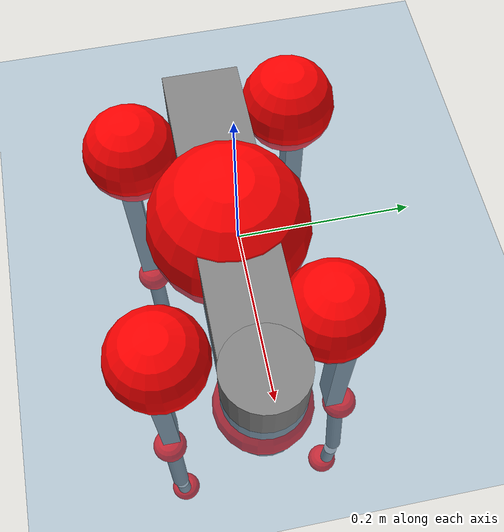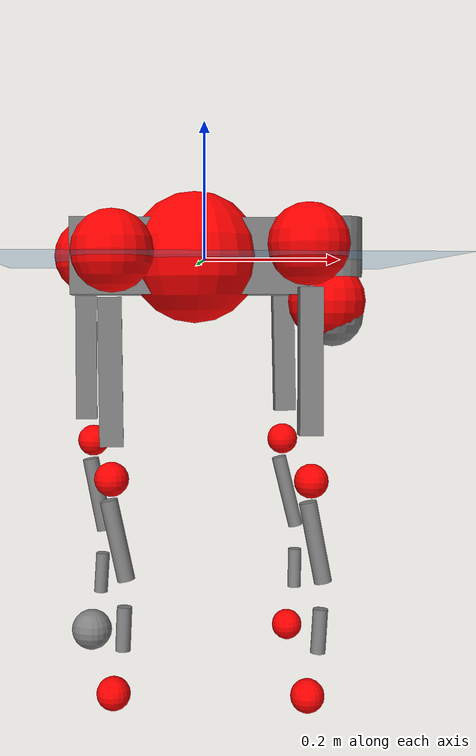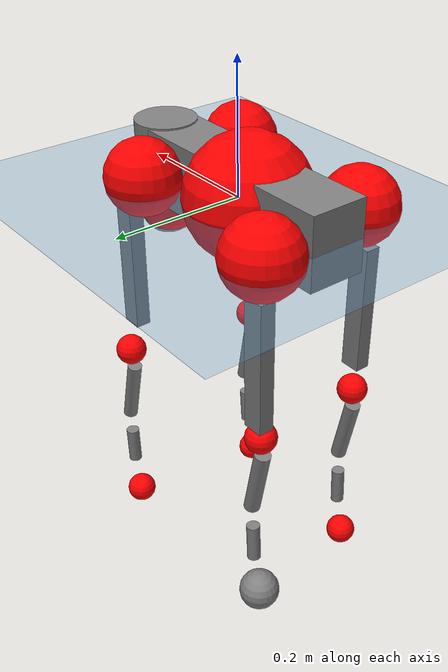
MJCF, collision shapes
<mujoco model="go2">
  <compiler angle="radian" assetdir="assets" balanceinertia="true" inertiafromgeom="false"/>

  <option timestep="0.005" density="1.2" viscosity="2e-05"/>

  <size nkey="1"/>

  <visual>
    <quality shadowsize="8192"/>
    <map shadowclip="0.5"/>
  </visual>

  <default>
    <default class="/">
      <geom contype="0" conaffinity="0" group="1" solref="-1000 -80"/>
      <site size="0.01 0.005 0.005" group="5"/>
      <general forcelimited="true" biastype="affine" gainprm="20" biasprm="0 -20 -0.5"/>
      <default class="go2">
        <joint armature="0.01" damping="0.01" frictionloss="0.2"/>
        <geom condim="1" margin="0.001"/>
        <default class="visual">
          <geom type="mesh" group="2"/>
        </default>
        <default class="collision">
          <geom group="3"/>
          <default class="foot">
            <geom size="0.022 0 0" condim="6" priority="1" friction="0.8 0.02 0.01" solimp="0.015 1 0.022"/>
          </default>
        </default>
        <default class="reward_collision_sphere">
          <geom group="5" rgba="1 0 0 1"/>
        </default>
      </default>
    </default>
  </default>

  <asset>
    <texture type="skybox" colorspace="auto" name="//unnamed_texture_0" builtin="gradient" rgb1="0.95 0.95 0.95" rgb2="0.95 0.95 0.95" width="100" height="600"/>
    <texture type="2d" colorspace="auto" name="texplane" builtin="checker" rgb1="0.345 0.575 0.748" rgb2="0.345 0.575 0.748" markrgb="1 1 1" width="512" height="512"/>
    <material name="MatPlane" class="/" texture="texplane" texuniform="true" texrepeat="2 2" specular="0.9"/>
    <material name="metal" class="/" rgba="0.9 0.95 0.95 1"/>
    <material name="black" class="/" rgba="0 0 0 1"/>
    <material name="white" class="/"/>
    <material name="gray" class="/" rgba="0.671705 0.692426 0.77427 1"/>
    <mesh name="base_0" class="/" file="base_0.obj"/>
    <mesh name="base_1" class="/" file="base_1.obj"/>
    <mesh name="base_2" class="/" file="base_2.obj"/>
    <mesh name="base_3" class="/" file="base_3.obj"/>
    <mesh name="base_4" class="/" file="base_4.obj"/>
    <mesh name="hip_0" class="/" file="hip_0.obj"/>
    <mesh name="hip_1" class="/" file="hip_1.obj"/>
    <mesh name="thigh_0" class="/" file="thigh_0.obj"/>
    <mesh name="thigh_1" class="/" file="thigh_1.obj"/>
    <mesh name="thigh_mirror_0" class="/" file="thigh_mirror_0.obj"/>
    <mesh name="thigh_mirror_1" class="/" file="thigh_mirror_1.obj"/>
    <mesh name="calf_0" class="/" file="calf_0.obj"/>
    <mesh name="calf_1" class="/" file="calf_1.obj"/>
    <mesh name="calf_mirror_0" class="/" file="calf_mirror_0.obj"/>
    <mesh name="calf_mirror_1" class="/" file="calf_mirror_1.obj"/>
    <mesh name="foot" class="/" file="foot.obj"/>
  </asset>

  <worldbody>
    <geom name="floor" class="/" size="100 100 0.125" type="plane" group="0" material="MatPlane"/>
    <light name="toplight_shadow" class="/" pos="0 0 5" dir="0.0990148 0.0990148 -0.990148" type="directional" ambient="0.04 0.04 0.04" diffuse="0.55 0.55 0.55" specular="0.12 0.12 0.12"/>
    <light name="toplight_fill" class="/" pos="0 0 5" dir="0.0990148 0.0990148 -0.990148" type="directional" castshadow="false" ambient="0.04 0.04 0.04" diffuse="0.3 0.3 0.3" specular="0.08 0.08 0.08"/>
    <body name="trunk" childclass="go2" pos="-0.0145575 -0.00780711 0.00284276" quat="0.999996 -0.00260865 -0.00086412 0.000788427">
      <inertial pos="0.0159277 0.00283228 -0.00670458" quat="0.00219829 0.686627 0.0288537 0.726434" mass="6.07134" diaginertia="0.0120755 0.0175301 0.137142"/>
      <joint name="//unnamed_joint_0" type="free" armature="0" damping="0" frictionloss="0"/>
      <geom name="//unnamed_geom_1" class="visual" material="black" mesh="base_0"/>
      <geom name="//unnamed_geom_2" class="visual" material="black" mesh="base_1"/>
      <geom name="//unnamed_geom_3" class="visual" material="black" mesh="base_2"/>
      <geom name="//unnamed_geom_4" class="visual" material="white" mesh="base_3"/>
      <geom name="//unnamed_geom_5" class="visual" material="gray" mesh="base_4"/>
      <geom name="trunk_1" class="collision" size="0.180529 0.0448683 0.0547058" type="box"/>
      <geom name="trunk_2" class="collision" size="0.0479875 0.0431888" pos="0.199039 0 0.0142388" type="cylinder"/>
      <geom name="trunk_3" class="collision" size="0.0451083" pos="0.204626 0 -0.0854327"/>
      <geom name="//unnamed_geom_9" class="reward_collision_sphere" size="0.095975"/>
      <geom name="//unnamed_geom_10" class="reward_collision_sphere" size="0.057585" pos="0.195547 0 -0.0640745"/>
      <site name="imu" pos="-0.0488012 0.0202644 0.140611" size="0.0095975"/>
      <camera name="track" pos="0 -1.51398 0" quat="0.707107 0.707107 0 0" mode="trackcom"/>
      <camera name="ego_camera" pos="0.217896 0 0.0640745" quat="-0.5 -0.5 0.5 0.5"/>
      <body name="FL_hip" pos="0.132464 0.0347323 0.0101897" quat="0.999977 -0.00123503 -0.00617826 0.00263398">
        <inertial pos="0.0117244 0.00948898 0.000856567" quat="0.497148 0.501233 0.505311 0.496256" mass="0.655464" diaginertia="0.000160368 0.000174623 0.00301647"/>
        <joint name="FL_hip_joint" pos="0 0 0" axis="0.9962 -0.0671929 -0.0554152" stiffness="0.0735309" range="-0.988636 1.02779" armature="0.0167593" damping="0" frictionloss="0.104899"/>
        <geom name="//unnamed_geom_11" class="visual" material="metal" mesh="hip_0"/>
        <geom name="//unnamed_geom_12" class="visual" material="gray" mesh="hip_1"/>
        <geom name="//unnamed_geom_13" class="collision" size="0.0441485 0.019195" pos="0 0.0605591 0" quat="0.707107 0.707107 0 0" type="cylinder"/>
        <geom name="//unnamed_geom_14" class="reward_collision_sphere" size="0.057585" pos="0 0.0529893 0"/>
        <body name="FL_thigh" pos="0.0109623 0.0721757 0.00970386" quat="0.999991 0.000660326 -0.00411433 0.000291084">
          <inertial pos="8.33861e-05 -0.0183314 -0.0299686" quat="0.852023 0.093394 -0.015909 0.514861" mass="1.07681" diaginertia="0.00105312 0.00156994 0.00572596"/>
          <joint name="FL_thigh_joint" pos="0 0 0" axis="0.0136479 0.998854 0.0458737" stiffness="0.0533868" range="-1.73603 3.51772" armature="0.00248348" damping="0.0529646" frictionloss="0.28917"/>
          <geom name="//unnamed_geom_15" class="visual" material="metal" mesh="thigh_0"/>
          <geom name="//unnamed_geom_16" class="visual" material="gray" mesh="thigh_1"/>
          <geom name="//unnamed_geom_17" class="collision" size="0.102213 0.0117569 0.0163158" pos="0 0 -0.151643" quat="0.707107 0 0.707107 0" type="box"/>
          <body name="FL_calf" pos="-0.00178511 0.0169798 -0.301069" quat="0.999982 -0.000354488 -0.00509853 0.0030216">
            <inertial pos="-0.00454221 0.00509828 -0.201142" quat="0.723241 -0.035599 -0.0687065 0.686247" mass="0.161033" diaginertia="0.000248687 0.000314069 0.000316498"/>
            <joint name="FL_calf_joint" pos="0 0 0" axis="-0.0345715 0.999366 -0.00850292" range="-2.74436 -0.750295" armature="0.00853632" damping="0.0619437" frictionloss="0.160177"/>
            <geom name="//unnamed_geom_18" class="visual" material="gray" mesh="calf_0"/>
            <geom name="//unnamed_geom_19" class="visual" material="black" mesh="calf_1"/>
            <geom name="FL_calf0" class="collision" size="0.011517 0.057585" pos="0.00558707 0 -0.0854327" quat="0.994493 0 -0.104807 0" type="cylinder"/>
            <geom name="//unnamed_geom_21" class="collision" size="0.0105573 0.0311919" pos="0.0139677 0 -0.210734" quat="0.999688 0 0.0249974 0" type="cylinder"/>
            <geom name="//unnamed_geom_22" class="visual" pos="0 0 -0.303286" quat="1 0 0 0" material="black" mesh="foot"/>
            <geom name="FL_foot" class="foot" size="0.0117235" pos="-0.00139677 0 -0.303286"/>
            <geom name="//unnamed_geom_24" class="reward_collision_sphere" size="0.0239938"/>
            <geom name="//unnamed_geom_25" class="reward_collision_sphere" size="0.0239938" pos="-0.00139677 0 -0.303286"/>
            <site name="FL_foot" class="foot" pos="-0.00139677 0 -0.303286" size="0.0095975"/>
          </body>
        </body>
      </body>
      <body name="FR_hip" pos="0.15178 -0.0514461 0.0133088" quat="0.999999 -4.6833e-05 -0.000434975 -0.00111848">
        <inertial pos="-0.0200929 -0.00762721 0.0149384" quat="0.504456 0.491233 0.537633 0.463858" mass="0.45596" diaginertia="0.000121647 0.000135508 0.00226117"/>
        <joint name="FR_hip_joint" pos="0 0 0" axis="0.997433 -0.0714769 -0.00437935" range="-0.741028 0.969626" armature="0.00997613" damping="0" frictionloss="0.322523"/>
        <geom name="//unnamed_geom_26" class="visual" pos="0 -5.80966e-09 -2.49188e-07" quat="4.63268e-05 1 0 0" material="metal" mesh="hip_0"/>
        <geom name="//unnamed_geom_27" class="visual" pos="0 -9.41815e-09 6.16338e-07" quat="4.63268e-05 1 0 0" material="gray" mesh="hip_1"/>
        <geom name="//unnamed_geom_28" class="collision" size="0.0441485 0.019195" pos="0 -0.0605591 0" quat="0.707107 0.707107 0 0" type="cylinder"/>
        <geom name="//unnamed_geom_29" class="reward_collision_sphere" size="0.057585" pos="0 -0.0529893 0"/>
        <body name="FR_thigh" pos="0.000537658 -0.0656694 -0.0103032" quat="1 0.0003473 -0.000143389 -3.87651e-05">
          <inertial pos="0.00677437 -0.000607712 -0.0527014" quat="0.551987 -0.0206591 0.0842725 0.829326" mass="0.924858" diaginertia="0.000966248 0.00125121 0.0046529"/>
          <joint name="FR_thigh_joint" pos="0 0 0" axis="-0.028909 -0.998576 0.0448397" range="-3.41441 1.38586" armature="0.0129341" damping="0.0638103" frictionloss="0.14446"/>
          <geom name="//unnamed_geom_30" class="visual" material="metal" mesh="thigh_mirror_0"/>
          <geom name="//unnamed_geom_31" class="visual" material="gray" mesh="thigh_mirror_1"/>
          <geom name="//unnamed_geom_32" class="collision" size="0.102213 0.0117569 0.0163158" pos="0 0 -0.151643" quat="0.707107 0 0.707107 0" type="box"/>
          <body name="FR_calf" pos="0.00064761 -0.00644416 -0.317068" quat="0.999966 -0.000727708 0.00534786 0.00618847">
            <inertial pos="-0.0132125 0.0115717 -0.21495" quat="0.699145 -0.0225013 -0.0128619 0.71451" mass="0.263216" diaginertia="0.00023038 0.00031641 0.000260329"/>
            <joint name="FR_calf_joint" pos="0 0 0" axis="-0.0120374 -0.999454 0.0307676" range="1.14972 2.77713" armature="0.0074369" damping="0" frictionloss="0.0544538"/>
            <geom name="//unnamed_geom_33" class="visual" material="gray" mesh="calf_mirror_0"/>
            <geom name="//unnamed_geom_34" class="visual" material="black" mesh="calf_mirror_1"/>
            <geom name="FR_calf0" class="collision" size="0.0124768 0.057585" pos="0.00698383 0 -0.0854327" quat="0.995004 0 -0.0998334 0" type="cylinder"/>
            <geom name="//unnamed_geom_36" class="collision" size="0.0105573 0.0311919" pos="0.0139677 0 -0.210734" quat="0.999688 0 0.0249974 0" type="cylinder"/>
            <geom name="//unnamed_geom_37" class="visual" pos="0 0 -0.303286" quat="1 0 0 0" material="black" mesh="foot"/>
            <geom name="FR_foot" class="foot" size="0.022464" pos="-0.00139677 0 -0.303286"/>
            <geom name="//unnamed_geom_39" class="reward_collision_sphere" size="0.0239938"/>
            <geom name="//unnamed_geom_40" class="reward_collision_sphere" size="0.0239938" pos="-0.00139677 0 -0.303286"/>
            <site name="FR_foot" class="foot" pos="-0.00139677 0 -0.303286" size="0.0095975"/>
          </body>
        </body>
      </body>
      <body name="RL_hip" pos="-0.152941 0.0494723 0.00740083" quat="0.999995 0.00130995 0.000194976 0.0029248">
        <inertial pos="-0.0119327 0.0187454 -0.000352183" quat="0.474369 0.476499 0.486467 0.557918" mass="0.671456" diaginertia="0.000159093 0.000149444 0.00331963"/>
        <joint name="RL_hip_joint" pos="0 0 0" axis="-0.999096 0.0199929 0.037514" stiffness="0.00313351" range="-1.28027 0.892781" armature="0.00958595" damping="0.0151089" frictionloss="0.261055"/>
        <geom name="//unnamed_geom_41" class="visual" pos="6.32021e-09 0 1.23891e-06" quat="4.63268e-05 0 1 0" material="metal" mesh="hip_0"/>
        <geom name="//unnamed_geom_42" class="visual" pos="1.02458e-08 0 1.09873e-06" quat="4.63268e-05 0 1 0" material="gray" mesh="hip_1"/>
        <geom name="//unnamed_geom_43" class="collision" size="0.0441485 0.019195" pos="0 0.0605591 0" quat="0.707107 0.707107 0 0" type="cylinder"/>
        <geom name="//unnamed_geom_44" class="reward_collision_sphere" size="0.057585" pos="0 0.0529893 0"/>
        <body name="RL_thigh" pos="-0.00980126 0.0645908 0.000350164" quat="0.999993 0.0022857 0.00154515 0.00257068">
          <inertial pos="-0.00788292 -0.0329221 -0.0489911" quat="0.833954 0.0539406 -0.0747675 0.544077" mass="0.808515" diaginertia="0.000960039 0.00119395 0.00529809"/>
          <joint name="RL_thigh_joint" pos="0 0 0" axis="0.0497751 0.997205 0.0557232" stiffness="0.0601108" range="-0.756335 4.32115" armature="0.0026682" damping="0" frictionloss="0.0605003"/>
          <geom name="//unnamed_geom_45" class="visual" material="metal" mesh="thigh_0"/>
          <geom name="//unnamed_geom_46" class="visual" material="gray" mesh="thigh_1"/>
          <geom name="//unnamed_geom_47" class="collision" size="0.102213 0.0117569 0.0163158" pos="0 0 -0.151643" quat="0.707107 0 0.707107 0" type="box"/>
          <body name="RL_calf" pos="0.0107694 -0.0133063 -0.28657" quat="0.999964 0.00661375 0.00524038 0.000556245">
            <inertial pos="0.00102775 0.000838316 -0.219092" quat="0.719273 -0.0322686 0.0280386 0.693411" mass="0.250978" diaginertia="0.00025052 0.000399398 0.0003015"/>
            <joint name="RL_calf_joint" pos="0 0 0" axis="0.0384287 0.999238 0.00682337" stiffness="0.0437794" range="-2.83743 -0.619239" armature="0.00703576" damping="0.00533396" frictionloss="0.314898"/>
            <geom name="//unnamed_geom_48" class="visual" material="gray" mesh="calf_0"/>
            <geom name="//unnamed_geom_49" class="visual" material="black" mesh="calf_1"/>
            <geom name="RL_calf0" class="collision" size="0.0124768 0.057585" pos="0.00698383 0 -0.0854327" quat="0.995004 0 -0.0998334 0" type="cylinder"/>
            <geom name="//unnamed_geom_51" class="collision" size="0.0105573 0.0311919" pos="0.0139677 0 -0.210734" quat="0.999688 0 0.0249974 0" type="cylinder"/>
            <geom name="//unnamed_geom_52" class="visual" pos="0 0 -0.303286" quat="1 0 0 0" material="black" mesh="foot"/>
            <geom name="RL_foot" class="foot" size="0.0316605" pos="-0.00139677 0 -0.303286"/>
            <geom name="//unnamed_geom_54" class="reward_collision_sphere" size="0.0239938"/>
            <geom name="//unnamed_geom_55" class="reward_collision_sphere" size="0.0239938" pos="-0.00139677 0 -0.303286"/>
            <site name="RL_foot" class="foot" pos="-0.00139677 0 -0.303286" size="0.0095975"/>
          </body>
        </body>
      </body>
      <body name="RR_hip" pos="-0.119309 -0.043446 0.00429723" quat="0.999993 0.00268402 -3.59422e-05 -0.00246624">
        <inertial pos="-0.00831316 -0.0110743 -0.00056151" quat="0.518473 0.515415 0.525142 0.435613" mass="0.639974" diaginertia="0.000135885 0.000135153 0.00257677"/>
        <joint name="RR_hip_joint" pos="0 0 0" axis="-0.996675 0.0808644 0.00997867" stiffness="0.0224588" range="-1.04454 0.908909" armature="0.0136907" damping="0" frictionloss="0.177106"/>
        <geom name="//unnamed_geom_56" class="visual" pos="-6.31818e-09 -5.80966e-09 1.4881e-06" quat="2.14617e-09 4.63268e-05 4.63268e-05 -1" material="metal" mesh="hip_0"/>
        <geom name="//unnamed_geom_57" class="visual" pos="-1.02508e-08 -9.41815e-09 4.82396e-07" quat="2.14617e-09 4.63268e-05 4.63268e-05 -1" material="gray" mesh="hip_1"/>
        <geom name="//unnamed_geom_58" class="collision" size="0.0441485 0.019195" pos="0 -0.0605591 0" quat="0.707107 0.707107 0 0" type="cylinder"/>
        <geom name="//unnamed_geom_59" class="reward_collision_sphere" size="0.057585" pos="0 -0.0529893 0"/>
        <body name="RR_thigh" pos="-0.00361998 -0.0663933 -0.0145291" quat="0.999993 0.00138234 -0.00299436 0.00191297">
          <inertial pos="-0.008525 0.0194315 -0.0531491" quat="0.489872 -0.0120133 0.0434006 0.87063" mass="1.07646" diaginertia="0.0010011 0.0011902 0.00398085"/>
          <joint name="RR_thigh_joint" pos="0 0 0" axis="-0.0265708 -0.999552 -0.013774" stiffness="0.0595017" range="-4.56333 0.377395" armature="0.00373056" damping="0.0738661" frictionloss="0.280333"/>
          <geom name="//unnamed_geom_60" class="visual" material="metal" mesh="thigh_mirror_0"/>
          <geom name="//unnamed_geom_61" class="visual" material="gray" mesh="thigh_mirror_1"/>
          <geom name="//unnamed_geom_62" class="collision" size="0.102213 0.0117569 0.0163158" pos="0 0 -0.151643" quat="0.707107 0 0.707107 0" type="box"/>
          <body name="RR_calf" pos="-0.000779765 0.00154602 -0.300072" quat="1 0.000417348 0.000230608 -0.000348027">
            <inertial pos="0.0187844 0.0169473 -0.216985" quat="0.711625 -0.0072895 -0.00380523 0.702511" mass="0.184167" diaginertia="0.000294393 0.000312534 0.000323807"/>
            <joint name="RR_calf_joint" pos="0 0 0" axis="-0.0332945 -0.999443 -0.00211636" stiffness="0.0218752" range="0.984784 2.40969" armature="0.00980809" damping="0" frictionloss="0.0393614"/>
            <geom name="//unnamed_geom_63" class="visual" material="gray" mesh="calf_mirror_0"/>
            <geom name="//unnamed_geom_64" class="visual" material="black" mesh="calf_mirror_1"/>
            <geom name="RR_calf0" class="collision" size="0.0124768 0.057585" pos="0.00698383 0 -0.0854327" quat="0.995004 0 -0.0998334 0" type="cylinder"/>
            <geom name="//unnamed_geom_66" class="collision" size="0.0105573 0.0311919" pos="0.0139677 0 -0.210734" quat="0.999688 0 0.0249974 0" type="cylinder"/>
            <geom name="//unnamed_geom_67" class="visual" pos="0 0 -0.303286" quat="1 0 0 0" material="black" mesh="foot"/>
            <geom name="RR_foot" class="foot" size="0.00894279" pos="-0.00139677 0 -0.303286"/>
            <geom name="//unnamed_geom_69" class="reward_collision_sphere" size="0.0239938"/>
            <geom name="//unnamed_geom_70" class="reward_collision_sphere" size="0.0239938" pos="-0.00139677 0 -0.303286"/>
            <site name="RR_foot" class="foot" pos="-0.00139677 0 -0.303286" size="0.0095975"/>
          </body>
        </body>
      </body>
    </body>
  </worldbody>

  <contact>
    <pair class="/" geom1="floor" geom2="FL_foot" name="//unnamed_contact_0"/>
    <pair class="/" geom1="floor" geom2="FR_foot" name="//unnamed_contact_1"/>
    <pair class="/" geom1="floor" geom2="RL_foot" name="//unnamed_contact_2"/>
    <pair class="/" geom1="floor" geom2="RR_foot" name="//unnamed_contact_3"/>
  </contact>

  <actuator>
    <general name="FL_hip" class="/" joint="FL_hip_joint" forcerange="-22.9638 22.9638" gainprm="19.2469" biasprm="0 -19.2469 -0.399229"/>
    <general name="FL_thigh" class="/" joint="FL_thigh_joint" forcerange="-34.4007 34.4007" gainprm="19.2469" biasprm="0 -19.2469 -0.399229"/>
    <general name="FL_calf" class="/" joint="FL_calf_joint" forcerange="-30.0836 30.0836" gainprm="19.2469" biasprm="0 -19.2469 -0.399229"/>
    <general name="FR_hip" class="/" joint="FR_hip_joint" forcerange="-23.1594 23.1594" gainprm="19.2469" biasprm="0 -19.2469 -0.399229"/>
    <general name="FR_thigh" class="/" joint="FR_thigh_joint" forcerange="-19.4978 19.4978" gainprm="19.2469" biasprm="0 -19.2469 -0.399229"/>
    <general name="FR_calf" class="/" joint="FR_calf_joint" forcerange="-26.6102 26.6102" gainprm="19.2469" biasprm="0 -19.2469 -0.399229"/>
    <general name="RL_hip" class="/" joint="RL_hip_joint" forcerange="-23.3588 23.3588" gainprm="19.2469" biasprm="0 -19.2469 -0.399229"/>
    <general name="RL_thigh" class="/" joint="RL_thigh_joint" forcerange="-13.5867 13.5867" gainprm="19.2469" biasprm="0 -19.2469 -0.399229"/>
    <general name="RL_calf" class="/" joint="RL_calf_joint" forcerange="-59.8922 59.8922" gainprm="19.2469" biasprm="0 -19.2469 -0.399229"/>
    <general name="RR_hip" class="/" joint="RR_hip_joint" forcerange="-24.9692 24.9692" gainprm="19.2469" biasprm="0 -19.2469 -0.399229"/>
    <general name="RR_thigh" class="/" joint="RR_thigh_joint" forcerange="-17.0478 17.0478" gainprm="19.2469" biasprm="0 -19.2469 -0.399229"/>
    <general name="RR_calf" class="/" joint="RR_calf_joint" forcerange="-71.2771 71.2771" gainprm="19.2469" biasprm="0 -19.2469 -0.399229"/>
  </actuator>

  <sensor>
    <gyro site="imu" name="imu_angular_velocity"/>
    <velocimeter site="imu" name="imu_linear_velocity"/>
    <framelinvel objtype="site" objname="FL_foot" name="FL_foot_global_linear_velocity"/>
    <framelinvel objtype="site" objname="FR_foot" name="FR_foot_global_linear_velocity"/>
    <framelinvel objtype="site" objname="RL_foot" name="RL_foot_global_linear_velocity"/>
    <framelinvel objtype="site" objname="RR_foot" name="RR_foot_global_linear_velocity"/>
  </sensor>

  <keyframe>
    <key name="home" qpos="0 0 0.325 1 0 0 0 0.1 0.8 -1.5 -0.1 -0.8 1.5 -0.1 0.8 -1.5 0.1 -0.8 1.5"/>
  </keyframe>
</mujoco>
